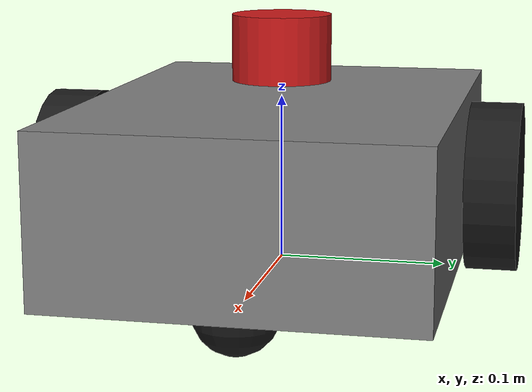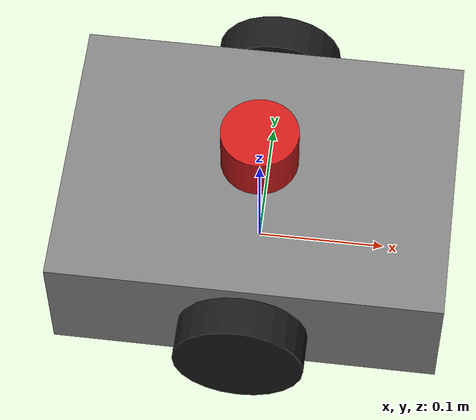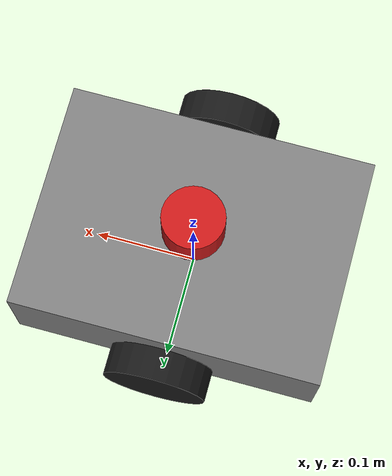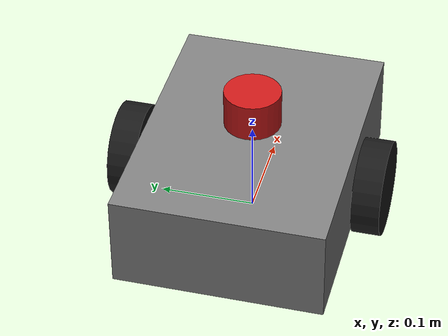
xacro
<?xml version="1.0"?>
<robot name="nav_bot" xmlns:xacro="http://www.ros.org/wiki/xacro">

  <!-- ===================== Properties ===================== -->
  <xacro:property name="chassis_length" value="0.30"/>
  <xacro:property name="chassis_width"  value="0.22"/>
  <xacro:property name="chassis_height" value="0.10"/>
  <xacro:property name="wheel_radius"   value="0.05"/>
  <xacro:property name="wheel_width"    value="0.03"/>
  <xacro:property name="wheel_separation" value="0.26"/>

  <!-- ===================== base_link / footprint ===================== -->
  <link name="base_footprint"/>

  <link name="base_link">
    <visual>
      <geometry><box size="${chassis_length} ${chassis_width} ${chassis_height}"/></geometry>
      <origin xyz="0 0 0" rpy="0 0 0"/>
      <material name="grey"><color rgba="0.5 0.5 0.5 1"/></material>
    </visual>
    <collision>
      <geometry><box size="${chassis_length} ${chassis_width} ${chassis_height}"/></geometry>
      <origin xyz="0 0 0" rpy="0 0 0"/>
    </collision>
    <inertial>
      <mass value="5.0"/>
      <origin xyz="0 0 0"/>
      <inertia ixx="0.05" ixy="0" ixz="0" iyy="0.08" iyz="0" izz="0.09"/>
    </inertial>
  </link>

  <joint name="base_footprint_joint" type="fixed">
    <parent link="base_footprint"/>
    <child link="base_link"/>
    <origin xyz="0 0 ${wheel_radius}" rpy="0 0 0"/>
  </joint>

  <!-- ===================== Wheels (macro) ===================== -->
  <xacro:macro name="wheel" params="prefix y_reflect">
    <link name="${prefix}_wheel">
      <visual>
        <geometry><cylinder radius="${wheel_radius}" length="${wheel_width}"/></geometry>
        <origin xyz="0 0 0" rpy="1.5708 0 0"/>
        <material name="black"><color rgba="0.1 0.1 0.1 1"/></material>
      </visual>
      <collision>
        <geometry><cylinder radius="${wheel_radius}" length="${wheel_width}"/></geometry>
        <origin xyz="0 0 0" rpy="1.5708 0 0"/>
      </collision>
      <inertial>
        <mass value="0.5"/>
        <origin xyz="0 0 0"/>
        <inertia ixx="0.001" ixy="0" ixz="0" iyy="0.001" iyz="0" izz="0.001"/>
      </inertial>
    </link>

    <joint name="${prefix}_wheel_joint" type="continuous">
      <parent link="base_link"/>
      <child link="${prefix}_wheel"/>
      <origin xyz="0 ${y_reflect * wheel_separation / 2} -${wheel_radius - chassis_height/2}" rpy="0 0 0"/>
      <axis xyz="0 1 0"/>
    </joint>
  </xacro:macro>

  <xacro:wheel prefix="left"  y_reflect="1"/>
  <xacro:wheel prefix="right" y_reflect="-1"/>

  <!-- Caster (passive support wheel) -->
  <link name="caster_wheel">
    <visual>
      <geometry><sphere radius="0.025"/></geometry>
      <material name="black"/>
    </visual>
    <collision>
      <geometry><sphere radius="0.025"/></geometry>
    </collision>
    <inertial>
      <mass value="0.1"/>
      <origin xyz="0 0 0"/>
      <inertia ixx="0.0001" ixy="0" ixz="0" iyy="0.0001" iyz="0" izz="0.0001"/>
    </inertial>
  </link>
  <joint name="caster_joint" type="fixed">
    <parent link="base_link"/>
    <child link="caster_wheel"/>
    <origin xyz="${chassis_length/2 - 0.03} 0 -${chassis_height/2}" rpy="0 0 0"/>
  </joint>

  <!-- ===================== LiDAR ===================== -->
  <link name="lidar_link">
    <visual>
      <geometry><cylinder radius="0.03" length="0.04"/></geometry>
      <material name="red"><color rgba="0.8 0.1 0.1 1"/></material>
    </visual>
    <collision>
      <geometry><cylinder radius="0.03" length="0.04"/></geometry>
    </collision>
    <inertial>
      <mass value="0.1"/>
      <origin xyz="0 0 0"/>
      <inertia ixx="0.0001" ixy="0" ixz="0" iyy="0.0001" iyz="0" izz="0.0001"/>
    </inertial>
  </link>
  <joint name="lidar_joint" type="fixed">
    <parent link="base_link"/>
    <child link="lidar_link"/>
    <origin xyz="0 0 ${chassis_height/2 + 0.03}" rpy="0 0 0"/>
  </joint>

  <!-- ===================== Gazebo plugins ===================== -->
  <gazebo>
    <plugin name="diff_drive" filename="libgazebo_ros_diff_drive.so">
      <ros><namespace>/</namespace></ros>
      <left_joint>left_wheel_joint</left_joint>
      <right_joint>right_wheel_joint</right_joint>
      <wheel_separation>${wheel_separation}</wheel_separation>
      <wheel_diameter>${2 * wheel_radius}</wheel_diameter>
      <max_wheel_torque>20</max_wheel_torque>
      <max_wheel_acceleration>1.0</max_wheel_acceleration>
      <command_topic>cmd_vel</command_topic>
      <odometry_topic>odom</odometry_topic>
      <odometry_frame>odom</odometry_frame>
      <robot_base_frame>base_footprint</robot_base_frame>
      <publish_odom>true</publish_odom>
      <publish_odom_tf>true</publish_odom_tf>
      <publish_wheel_tf>false</publish_wheel_tf>
    </plugin>
  </gazebo>

  <gazebo reference="lidar_link">
    <sensor type="ray" name="lidar_sensor">
      <pose>0 0 0 0 0 0</pose>
      <visualize>true</visualize>
      <update_rate>10</update_rate>
      <ray>
        <scan>
          <horizontal>
            <samples>360</samples>
            <resolution>1</resolution>
            <min_angle>-3.14159</min_angle>
            <max_angle>3.14159</max_angle>
          </horizontal>
        </scan>
        <range>
          <min>0.12</min>
          <max>10.0</max>
          <resolution>0.015</resolution>
        </range>
      </ray>
      <plugin name="lidar_plugin" filename="libgazebo_ros_ray_sensor.so">
        <ros><remapping>~/out:=scan</remapping></ros>
        <output_type>sensor_msgs/LaserScan</output_type>
        <frame_name>lidar_link</frame_name>
      </plugin>
    </sensor>
  </gazebo>

</robot>
